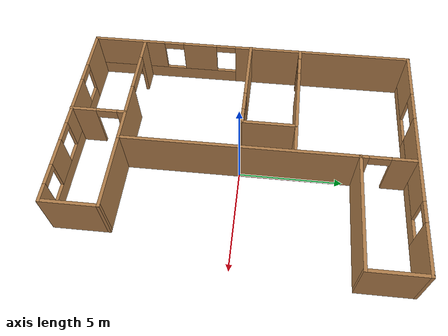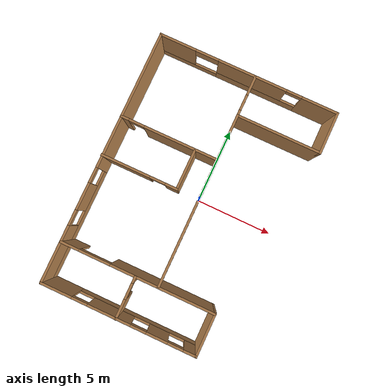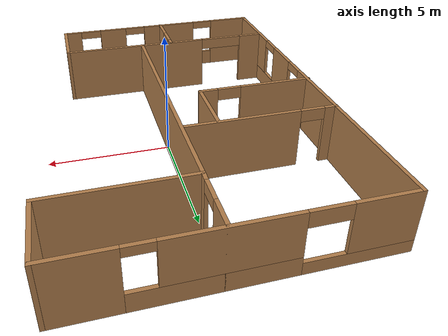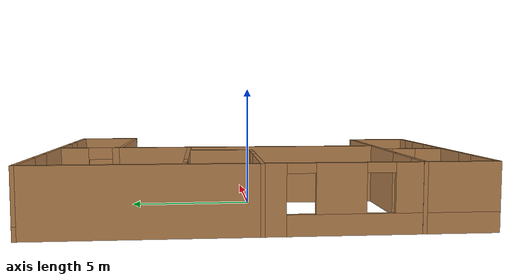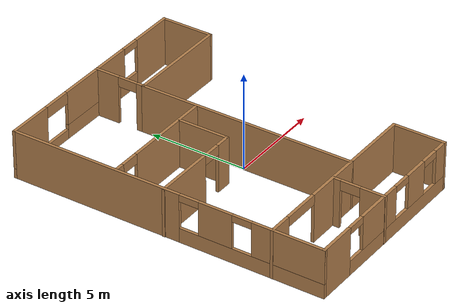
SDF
<?xml version='1.0'?>
<sdf version='1.6'>
  <model name='Building'>
    <pose frame=''>-0.466 -0.083499 0 0 -0 0</pose>
    <link name='Wall_35'>
      <pose frame=''>-0.859 -8.1425 0 0 -0 0</pose>
      <visual name='Wall_35_Visual_0'>
        <pose frame=''>-3.97971 0 1.25 0 -0 0</pose>
        <geometry>
          <box>
            <size>2.04059 0.15 2.5</size>
          </box>
        </geometry>
        <material>
          <script>
            <uri>file://media/materials/scripts/gazebo.material</uri>
            <name>Gazebo/Wood</name>
          </script>
          <ambient>0.996078 0.47451 0.0196078 1</ambient>
        </material>
        <meta>
          <layer>0</layer>
        </meta>
      </visual>
      <collision name='Wall_35_Collision_0'>
        <geometry>
          <box>
            <size>2.04059 0.15 2.5</size>
          </box>
        </geometry>
        <pose frame=''>-3.97971 0 1.25 0 -0 0</pose>
      </collision>
      <visual name='Wall_35_Visual_1'>
        <pose frame=''>1.02029 0 0.375 0 -0 0</pose>
        <geometry>
          <box>
            <size>7.95941 0.15 0.75</size>
          </box>
        </geometry>
        <material>
          <script>
            <uri>file://media/materials/scripts/gazebo.material</uri>
            <name>Gazebo/Wood</name>
          </script>
          <ambient>0.996078 0.47451 0.0196078 1</ambient>
        </material>
        <meta>
          <layer>0</layer>
        </meta>
      </visual>
      <collision name='Wall_35_Collision_1'>
        <geometry>
          <box>
            <size>7.95941 0.15 0.75</size>
          </box>
        </geometry>
        <pose frame=''>1.02029 0 0.375 0 -0 0</pose>
      </collision>
      <visual name='Wall_35_Visual_2'>
        <pose frame=''>-0.589488 0 1.625 0 -0 0</pose>
        <geometry>
          <box>
            <size>2.73985 0.15 1.75</size>
          </box>
        </geometry>
        <material>
          <script>
            <uri>file://media/materials/scripts/gazebo.material</uri>
            <name>Gazebo/Wood</name>
          </script>
          <ambient>0.996078 0.47451 0.0196078 1</ambient>
        </material>
        <meta>
          <layer>0</layer>
        </meta>
      </visual>
      <collision name='Wall_35_Collision_2'>
        <geometry>
          <box>
            <size>2.73985 0.15 1.75</size>
          </box>
        </geometry>
        <pose frame=''>-0.589488 0 1.625 0 -0 0</pose>
      </collision>
      <visual name='Wall_35_Visual_3'>
        <pose frame=''>2.45057 0 1.625 0 -0 0</pose>
        <geometry>
          <box>
            <size>1.34027 0.15 1.75</size>
          </box>
        </geometry>
        <material>
          <script>
            <uri>file://media/materials/scripts/gazebo.material</uri>
            <name>Gazebo/Wood</name>
          </script>
          <ambient>0.996078 0.47451 0.0196078 1</ambient>
        </material>
        <meta>
          <layer>0</layer>
        </meta>
      </visual>
      <collision name='Wall_35_Collision_3'>
        <geometry>
          <box>
            <size>1.34027 0.15 1.75</size>
          </box>
        </geometry>
        <pose frame=''>2.45057 0 1.625 0 -0 0</pose>
      </collision>
      <visual name='Wall_35_Visual_4'>
        <pose frame=''>4.56035 0 1.625 0 -0 0</pose>
        <geometry>
          <box>
            <size>0.879297 0.15 1.75</size>
          </box>
        </geometry>
        <material>
          <script>
            <uri>file://media/materials/scripts/gazebo.material</uri>
            <name>Gazebo/Wood</name>
          </script>
          <ambient>0.996078 0.47451 0.0196078 1</ambient>
        </material>
        <meta>
          <layer>0</layer>
        </meta>
      </visual>
      <collision name='Wall_35_Collision_4'>
        <geometry>
          <box>
            <size>0.879297 0.15 1.75</size>
          </box>
        </geometry>
        <pose frame=''>4.56035 0 1.625 0 -0 0</pose>
      </collision>
      <visual name='Wall_35_Visual_5'>
        <pose frame=''>-2.45941 0 2.325 0 -0 0</pose>
        <geometry>
          <box>
            <size>1 0.15 0.35</size>
          </box>
        </geometry>
        <material>
          <script>
            <uri>file://media/materials/scripts/gazebo.material</uri>
            <name>Gazebo/Wood</name>
          </script>
          <ambient>0.996078 0.47451 0.0196078 1</ambient>
        </material>
        <meta>
          <layer>0</layer>
        </meta>
      </visual>
      <collision name='Wall_35_Collision_5'>
        <geometry>
          <box>
            <size>1 0.15 0.35</size>
          </box>
        </geometry>
        <pose frame=''>-2.45941 0 2.325 0 -0 0</pose>
      </collision>
      <visual name='Wall_35_Visual_6'>
        <pose frame=''>1.28044 0 2.325 0 -0 0</pose>
        <geometry>
          <box>
            <size>1 0.15 0.35</size>
          </box>
        </geometry>
        <material>
          <script>
            <uri>file://media/materials/scripts/gazebo.material</uri>
            <name>Gazebo/Wood</name>
          </script>
          <ambient>0.996078 0.47451 0.0196078 1</ambient>
        </material>
        <meta>
          <layer>0</layer>
        </meta>
      </visual>
      <collision name='Wall_35_Collision_6'>
        <geometry>
          <box>
            <size>1 0.15 0.35</size>
          </box>
        </geometry>
        <pose frame=''>1.28044 0 2.325 0 -0 0</pose>
      </collision>
      <visual name='Wall_35_Visual_7'>
        <pose frame=''>3.6207 0 2.325 0 -0 0</pose>
        <geometry>
          <box>
            <size>1 0.15 0.35</size>
          </box>
        </geometry>
        <material>
          <script>
            <uri>file://media/materials/scripts/gazebo.material</uri>
            <name>Gazebo/Wood</name>
          </script>
          <ambient>0.996078 0.47451 0.0196078 1</ambient>
        </material>
        <meta>
          <layer>0</layer>
        </meta>
      </visual>
      <collision name='Wall_35_Collision_7'>
        <geometry>
          <box>
            <size>1 0.15 0.35</size>
          </box>
        </geometry>
        <pose frame=''>3.6207 0 2.325 0 -0 0</pose>
      </collision>
    </link>
    <link name='Wall_36'>
      <collision name='Wall_36_Collision'>
        <geometry>
          <box>
            <size>2.75 0.15 2.5</size>
          </box>
        </geometry>
        <pose frame=''>0 0 1.25 0 -0 0</pose>
      </collision>
      <visual name='Wall_36_Visual'>
        <pose frame=''>0 0 1.25 0 -0 0</pose>
        <geometry>
          <box>
            <size>2.75 0.15 2.5</size>
          </box>
        </geometry>
        <material>
          <script>
            <uri>file://media/materials/scripts/gazebo.material</uri>
            <name>Gazebo/Wood</name>
          </script>
          <ambient>0.996078 0.47451 0.0196078 1</ambient>
        </material>
        <meta>
          <layer>0</layer>
        </meta>
      </visual>
      <pose frame=''>4.066 -6.8425 0 0 -0 1.5708</pose>
    </link>
    <link name='Wall_37'>
      <collision name='Wall_37_Collision'>
        <geometry>
          <box>
            <size>3.75 0.15 2.5</size>
          </box>
        </geometry>
        <pose frame=''>0 0 1.25 0 -0 0</pose>
      </collision>
      <visual name='Wall_37_Visual'>
        <pose frame=''>0 0 1.25 0 -0 0</pose>
        <geometry>
          <box>
            <size>3.75 0.15 2.5</size>
          </box>
        </geometry>
        <material>
          <script>
            <uri>file://media/materials/scripts/gazebo.material</uri>
            <name>Gazebo/Wood</name>
          </script>
          <ambient>0.996078 0.47451 0.0196078 1</ambient>
        </material>
        <meta>
          <layer>0</layer>
        </meta>
      </visual>
      <pose frame=''>2.266 -5.5425 0 0 -0 3.14159</pose>
    </link>
    <link name='Wall_38'>
      <collision name='Wall_38_Collision'>
        <geometry>
          <box>
            <size>11.25 0.15 2.5</size>
          </box>
        </geometry>
        <pose frame=''>0 0 1.25 0 -0 0</pose>
      </collision>
      <visual name='Wall_38_Visual'>
        <pose frame=''>0 0 1.25 0 -0 0</pose>
        <geometry>
          <box>
            <size>11.25 0.15 2.5</size>
          </box>
        </geometry>
        <material>
          <script>
            <uri>file://media/materials/scripts/gazebo.material</uri>
            <name>Gazebo/Wood</name>
          </script>
          <ambient>0.996078 0.47451 0.0196078 1</ambient>
        </material>
        <meta>
          <layer>0</layer>
        </meta>
      </visual>
      <pose frame=''>0.466 0.007499 0 0 -0 1.5708</pose>
    </link>
    <link name='Wall_39'>
      <collision name='Wall_39_Collision'>
        <geometry>
          <box>
            <size>5.5 0.15 2.5</size>
          </box>
        </geometry>
        <pose frame=''>0 0 1.25 0 -0 0</pose>
      </collision>
      <visual name='Wall_39_Visual'>
        <pose frame=''>0 0 1.25 0 -0 0</pose>
        <geometry>
          <box>
            <size>5.5 0.15 2.5</size>
          </box>
        </geometry>
        <material>
          <script>
            <uri>file://media/materials/scripts/gazebo.material</uri>
            <name>Gazebo/Wood</name>
          </script>
          <ambient>0.996078 0.47451 0.0196078 1</ambient>
        </material>
        <meta>
          <layer>0</layer>
        </meta>
      </visual>
      <pose frame=''>3.141 5.5575 0 0 -0 0</pose>
    </link>
    <link name='Wall_40'>
      <collision name='Wall_40_Collision'>
        <geometry>
          <box>
            <size>2.75 0.15 2.5</size>
          </box>
        </geometry>
        <pose frame=''>0 0 1.25 0 -0 0</pose>
      </collision>
      <visual name='Wall_40_Visual'>
        <pose frame=''>0 0 1.25 0 -0 0</pose>
        <geometry>
          <box>
            <size>2.75 0.15 2.5</size>
          </box>
        </geometry>
        <material>
          <script>
            <uri>file://media/materials/scripts/gazebo.material</uri>
            <name>Gazebo/Wood</name>
          </script>
          <ambient>0.996078 0.47451 0.0196078 1</ambient>
        </material>
        <meta>
          <layer>0</layer>
        </meta>
      </visual>
      <pose frame=''>5.816 6.8575 0 0 -0 1.5708</pose>
    </link>
    <link name='Wall_41'>
      <pose frame=''>0.016 8.1575 0 0 -0 3.14159</pose>
      <visual name='Wall_41_Visual_0'>
        <pose frame=''>-4.68142 0 1.25 0 -0 0</pose>
        <geometry>
          <box>
            <size>2.38717 0.15 2.5</size>
          </box>
        </geometry>
        <material>
          <script>
            <uri>file://media/materials/scripts/gazebo.material</uri>
            <name>Gazebo/Wood</name>
          </script>
          <ambient>0.996078 0.47451 0.0196078 1</ambient>
        </material>
        <meta>
          <layer>0</layer>
        </meta>
      </visual>
      <collision name='Wall_41_Collision_0'>
        <geometry>
          <box>
            <size>2.38717 0.15 2.5</size>
          </box>
        </geometry>
        <pose frame=''>-4.68142 0 1.25 0 -0 0</pose>
      </collision>
      <visual name='Wall_41_Visual_1'>
        <pose frame=''>-0.76125 0 0.375 0 -0 0</pose>
        <geometry>
          <box>
            <size>5.45316 0.15 0.75</size>
          </box>
        </geometry>
        <material>
          <script>
            <uri>file://media/materials/scripts/gazebo.material</uri>
            <name>Gazebo/Wood</name>
          </script>
          <ambient>0.996078 0.47451 0.0196078 1</ambient>
        </material>
        <meta>
          <layer>0</layer>
        </meta>
      </visual>
      <collision name='Wall_41_Collision_1'>
        <geometry>
          <box>
            <size>5.45316 0.15 0.75</size>
          </box>
        </geometry>
        <pose frame=''>-0.76125 0 0.375 0 -0 0</pose>
      </collision>
      <visual name='Wall_41_Visual_2'>
        <pose frame=''>3.92016 0 0.25 0 -0 0</pose>
        <geometry>
          <box>
            <size>3.90967 0.15 0.5</size>
          </box>
        </geometry>
        <material>
          <script>
            <uri>file://media/materials/scripts/gazebo.material</uri>
            <name>Gazebo/Wood</name>
          </script>
          <ambient>0.996078 0.47451 0.0196078 1</ambient>
        </material>
        <meta>
          <layer>0</layer>
        </meta>
      </visual>
      <collision name='Wall_41_Collision_2'>
        <geometry>
          <box>
            <size>3.90967 0.15 0.5</size>
          </box>
        </geometry>
        <pose frame=''>3.92016 0 0.25 0 -0 0</pose>
      </collision>
      <visual name='Wall_41_Visual_3'>
        <pose frame=''>4.67016 0 1.5 0 -0 0</pose>
        <geometry>
          <box>
            <size>2.40967 0.15 2</size>
          </box>
        </geometry>
        <material>
          <script>
            <uri>file://media/materials/scripts/gazebo.material</uri>
            <name>Gazebo/Wood</name>
          </script>
          <ambient>0.996078 0.47451 0.0196078 1</ambient>
        </material>
        <meta>
          <layer>0</layer>
        </meta>
      </visual>
      <collision name='Wall_41_Collision_3'>
        <geometry>
          <box>
            <size>2.40967 0.15 2</size>
          </box>
        </geometry>
        <pose frame=''>4.67016 0 1.5 0 -0 0</pose>
      </collision>
      <visual name='Wall_41_Visual_4'>
        <pose frame=''>-0.26125 0 1.625 0 -0 0</pose>
        <geometry>
          <box>
            <size>4.45316 0.15 1.75</size>
          </box>
        </geometry>
        <material>
          <script>
            <uri>file://media/materials/scripts/gazebo.material</uri>
            <name>Gazebo/Wood</name>
          </script>
          <ambient>0.996078 0.47451 0.0196078 1</ambient>
        </material>
        <meta>
          <layer>0</layer>
        </meta>
      </visual>
      <collision name='Wall_41_Collision_4'>
        <geometry>
          <box>
            <size>4.45316 0.15 1.75</size>
          </box>
        </geometry>
        <pose frame=''>-0.26125 0 1.625 0 -0 0</pose>
      </collision>
      <visual name='Wall_41_Visual_5'>
        <pose frame=''>2.71533 0 2.2 0 -0 0</pose>
        <geometry>
          <box>
            <size>1.5 0.15 0.6</size>
          </box>
        </geometry>
        <material>
          <script>
            <uri>file://media/materials/scripts/gazebo.material</uri>
            <name>Gazebo/Wood</name>
          </script>
          <ambient>0.996078 0.47451 0.0196078 1</ambient>
        </material>
        <meta>
          <layer>0</layer>
        </meta>
      </visual>
      <collision name='Wall_41_Collision_5'>
        <geometry>
          <box>
            <size>1.5 0.15 0.6</size>
          </box>
        </geometry>
        <pose frame=''>2.71533 0 2.2 0 -0 0</pose>
      </collision>
      <visual name='Wall_41_Visual_6'>
        <pose frame=''>-2.98783 0 2.325 0 -0 0</pose>
        <geometry>
          <box>
            <size>1 0.15 0.35</size>
          </box>
        </geometry>
        <material>
          <script>
            <uri>file://media/materials/scripts/gazebo.material</uri>
            <name>Gazebo/Wood</name>
          </script>
          <ambient>0.996078 0.47451 0.0196078 1</ambient>
        </material>
        <meta>
          <layer>0</layer>
        </meta>
      </visual>
      <collision name='Wall_41_Collision_6'>
        <geometry>
          <box>
            <size>1 0.15 0.35</size>
          </box>
        </geometry>
        <pose frame=''>-2.98783 0 2.325 0 -0 0</pose>
      </collision>
    </link>
    <link name='Wall_42'>
      <pose frame=''>-5.784 0.007499 0 0 -0 -1.5708</pose>
      <visual name='Wall_42_Visual_0'>
        <pose frame=''>-3.729 0 1.25 0 -0 0</pose>
        <geometry>
          <box>
            <size>8.992 0.15 2.5</size>
          </box>
        </geometry>
        <material>
          <script>
            <uri>file://media/materials/scripts/gazebo.material</uri>
            <name>Gazebo/Wood</name>
          </script>
          <ambient>0.996078 0.47451 0.0196078 1</ambient>
        </material>
        <meta>
          <layer>0</layer>
        </meta>
      </visual>
      <collision name='Wall_42_Collision_0'>
        <geometry>
          <box>
            <size>8.992 0.15 2.5</size>
          </box>
        </geometry>
        <pose frame=''>-3.729 0 1.25 0 -0 0</pose>
      </collision>
      <visual name='Wall_42_Visual_1'>
        <pose frame=''>4.496 0 0.375 0 -0 0</pose>
        <geometry>
          <box>
            <size>7.458 0.15 0.75</size>
          </box>
        </geometry>
        <material>
          <script>
            <uri>file://media/materials/scripts/gazebo.material</uri>
            <name>Gazebo/Wood</name>
          </script>
          <ambient>0.996078 0.47451 0.0196078 1</ambient>
        </material>
        <meta>
          <layer>0</layer>
        </meta>
      </visual>
      <collision name='Wall_42_Collision_1'>
        <geometry>
          <box>
            <size>7.458 0.15 0.75</size>
          </box>
        </geometry>
        <pose frame=''>4.496 0 0.375 0 -0 0</pose>
      </collision>
      <visual name='Wall_42_Visual_2'>
        <pose frame=''>2.63915 0 1.625 0 -0 0</pose>
        <geometry>
          <box>
            <size>1.7443 0.15 1.75</size>
          </box>
        </geometry>
        <material>
          <script>
            <uri>file://media/materials/scripts/gazebo.material</uri>
            <name>Gazebo/Wood</name>
          </script>
          <ambient>0.996078 0.47451 0.0196078 1</ambient>
        </material>
        <meta>
          <layer>0</layer>
        </meta>
      </visual>
      <collision name='Wall_42_Collision_2'>
        <geometry>
          <box>
            <size>1.7443 0.15 1.75</size>
          </box>
        </geometry>
        <pose frame=''>2.63915 0 1.625 0 -0 0</pose>
      </collision>
      <visual name='Wall_42_Visual_3'>
        <pose frame=''>6.36815 0 1.625 0 -0 0</pose>
        <geometry>
          <box>
            <size>3.7137 0.15 1.75</size>
          </box>
        </geometry>
        <material>
          <script>
            <uri>file://media/materials/scripts/gazebo.material</uri>
            <name>Gazebo/Wood</name>
          </script>
          <ambient>0.996078 0.47451 0.0196078 1</ambient>
        </material>
        <meta>
          <layer>0</layer>
        </meta>
      </visual>
      <collision name='Wall_42_Collision_3'>
        <geometry>
          <box>
            <size>3.7137 0.15 1.75</size>
          </box>
        </geometry>
        <pose frame=''>6.36815 0 1.625 0 -0 0</pose>
      </collision>
      <visual name='Wall_42_Visual_4'>
        <pose frame=''>1.267 0 2.325 0 -0 0</pose>
        <geometry>
          <box>
            <size>1 0.15 0.35</size>
          </box>
        </geometry>
        <material>
          <script>
            <uri>file://media/materials/scripts/gazebo.material</uri>
            <name>Gazebo/Wood</name>
          </script>
          <ambient>0.996078 0.47451 0.0196078 1</ambient>
        </material>
        <meta>
          <layer>0</layer>
        </meta>
      </visual>
      <collision name='Wall_42_Collision_4'>
        <geometry>
          <box>
            <size>1 0.15 0.35</size>
          </box>
        </geometry>
        <pose frame=''>1.267 0 2.325 0 -0 0</pose>
      </collision>
      <visual name='Wall_42_Visual_5'>
        <pose frame=''>4.0113 0 2.325 0 -0 0</pose>
        <geometry>
          <box>
            <size>1 0.15 0.35</size>
          </box>
        </geometry>
        <material>
          <script>
            <uri>file://media/materials/scripts/gazebo.material</uri>
            <name>Gazebo/Wood</name>
          </script>
          <ambient>0.996078 0.47451 0.0196078 1</ambient>
        </material>
        <meta>
          <layer>0</layer>
        </meta>
      </visual>
      <collision name='Wall_42_Collision_5'>
        <geometry>
          <box>
            <size>1 0.15 0.35</size>
          </box>
        </geometry>
        <pose frame=''>4.0113 0 2.325 0 -0 0</pose>
      </collision>
    </link>
    <link name='Wall_44'>
      <pose frame=''>0.466 6.8575 0 0 -0 1.5708</pose>
      <visual name='Wall_44_Visual_0'>
        <pose frame=''>-1.15301 0 1.25 0 -0 0</pose>
        <geometry>
          <box>
            <size>0.443977 0.15 2.5</size>
          </box>
        </geometry>
        <material>
          <script>
            <uri>file://media/materials/scripts/gazebo.material</uri>
            <name>Gazebo/Wood</name>
          </script>
          <ambient>0.996078 0.47451 0.0196078 1</ambient>
        </material>
        <meta>
          <layer>0</layer>
        </meta>
      </visual>
      <collision name='Wall_44_Collision_0'>
        <geometry>
          <box>
            <size>0.443977 0.15 2.5</size>
          </box>
        </geometry>
        <pose frame=''>-1.15301 0 1.25 0 -0 0</pose>
      </collision>
      <visual name='Wall_44_Visual_1'>
        <pose frame=''>0.721988 0 1.25 0 -0 0</pose>
        <geometry>
          <box>
            <size>1.30602 0.15 2.5</size>
          </box>
        </geometry>
        <material>
          <script>
            <uri>file://media/materials/scripts/gazebo.material</uri>
            <name>Gazebo/Wood</name>
          </script>
          <ambient>0.996078 0.47451 0.0196078 1</ambient>
        </material>
        <meta>
          <layer>0</layer>
        </meta>
      </visual>
      <collision name='Wall_44_Collision_1'>
        <geometry>
          <box>
            <size>1.30602 0.15 2.5</size>
          </box>
        </geometry>
        <pose frame=''>0.721988 0 1.25 0 -0 0</pose>
      </collision>
      <visual name='Wall_44_Visual_2'>
        <pose frame=''>-0.431023 0 2.25 0 -0 0</pose>
        <geometry>
          <box>
            <size>1 0.15 0.5</size>
          </box>
        </geometry>
        <material>
          <script>
            <uri>file://media/materials/scripts/gazebo.material</uri>
            <name>Gazebo/Wood</name>
          </script>
          <ambient>0.996078 0.47451 0.0196078 1</ambient>
        </material>
        <meta>
          <layer>0</layer>
        </meta>
      </visual>
      <collision name='Wall_44_Collision_2'>
        <geometry>
          <box>
            <size>1 0.15 0.5</size>
          </box>
        </geometry>
        <pose frame=''>-0.431023 0 2.25 0 -0 0</pose>
      </collision>
    </link>
    <link name='Wall_46'>
      <pose frame=''>-2.733 2.6255 0 0 -0 0</pose>
      <visual name='Wall_46_Visual_0'>
        <pose frame=''>-2.84077 0 1.25 0 -0 0</pose>
        <geometry>
          <box>
            <size>0.56845 0.15 2.5</size>
          </box>
        </geometry>
        <material>
          <script>
            <uri>file://media/materials/scripts/gazebo.material</uri>
            <name>Gazebo/Wood</name>
          </script>
          <ambient>0.996078 0.47451 0.0196078 1</ambient>
        </material>
        <meta>
          <layer>0</layer>
        </meta>
      </visual>
      <collision name='Wall_46_Collision_0'>
        <geometry>
          <box>
            <size>0.56845 0.15 2.5</size>
          </box>
        </geometry>
        <pose frame=''>-2.84077 0 1.25 0 -0 0</pose>
      </collision>
      <visual name='Wall_46_Visual_1'>
        <pose frame=''>0.784225 0 1.25 0 -0 0</pose>
        <geometry>
          <box>
            <size>4.68155 0.15 2.5</size>
          </box>
        </geometry>
        <material>
          <script>
            <uri>file://media/materials/scripts/gazebo.material</uri>
            <name>Gazebo/Wood</name>
          </script>
          <ambient>0.996078 0.47451 0.0196078 1</ambient>
        </material>
        <meta>
          <layer>0</layer>
        </meta>
      </visual>
      <collision name='Wall_46_Collision_1'>
        <geometry>
          <box>
            <size>4.68155 0.15 2.5</size>
          </box>
        </geometry>
        <pose frame=''>0.784225 0 1.25 0 -0 0</pose>
      </collision>
      <visual name='Wall_46_Visual_2'>
        <pose frame=''>-2.05655 0 2.25 0 -0 0</pose>
        <geometry>
          <box>
            <size>1 0.15 0.5</size>
          </box>
        </geometry>
        <material>
          <script>
            <uri>file://media/materials/scripts/gazebo.material</uri>
            <name>Gazebo/Wood</name>
          </script>
          <ambient>0.996078 0.47451 0.0196078 1</ambient>
        </material>
        <meta>
          <layer>0</layer>
        </meta>
      </visual>
      <collision name='Wall_46_Collision_2'>
        <geometry>
          <box>
            <size>1 0.15 0.5</size>
          </box>
        </geometry>
        <pose frame=''>-2.05655 0 2.25 0 -0 0</pose>
      </collision>
    </link>
    <link name='Wall_48'>
      <pose frame=''>-3.391 0.046499 0 0 -0 0</pose>
      <visual name='Wall_48_Visual_0'>
        <pose frame=''>-0.915348 0 1.25 0 -0 0</pose>
        <geometry>
          <box>
            <size>3.1693 0.15 2.5</size>
          </box>
        </geometry>
        <material>
          <script>
            <uri>file://media/materials/scripts/gazebo.material</uri>
            <name>Gazebo/Wood</name>
          </script>
          <ambient>0.996078 0.47451 0.0196078 1</ambient>
        </material>
        <meta>
          <layer>0</layer>
        </meta>
      </visual>
      <collision name='Wall_48_Collision_0'>
        <geometry>
          <box>
            <size>3.1693 0.15 2.5</size>
          </box>
        </geometry>
        <pose frame=''>-0.915348 0 1.25 0 -0 0</pose>
      </collision>
      <visual name='Wall_48_Visual_1'>
        <pose frame=''>2.08465 0 1.25 0 -0 0</pose>
        <geometry>
          <box>
            <size>0.830696 0.15 2.5</size>
          </box>
        </geometry>
        <material>
          <script>
            <uri>file://media/materials/scripts/gazebo.material</uri>
            <name>Gazebo/Wood</name>
          </script>
          <ambient>0.996078 0.47451 0.0196078 1</ambient>
        </material>
        <meta>
          <layer>0</layer>
        </meta>
      </visual>
      <collision name='Wall_48_Collision_1'>
        <geometry>
          <box>
            <size>0.830696 0.15 2.5</size>
          </box>
        </geometry>
        <pose frame=''>2.08465 0 1.25 0 -0 0</pose>
      </collision>
      <visual name='Wall_48_Visual_2'>
        <pose frame=''>1.1693 0 2.25 0 -0 0</pose>
        <geometry>
          <box>
            <size>1 0.15 0.5</size>
          </box>
        </geometry>
        <material>
          <script>
            <uri>file://media/materials/scripts/gazebo.material</uri>
            <name>Gazebo/Wood</name>
          </script>
          <ambient>0.996078 0.47451 0.0196078 1</ambient>
        </material>
        <meta>
          <layer>0</layer>
        </meta>
      </visual>
      <collision name='Wall_48_Collision_2'>
        <geometry>
          <box>
            <size>1 0.15 0.5</size>
          </box>
        </geometry>
        <pose frame=''>1.1693 0 2.25 0 -0 0</pose>
      </collision>
    </link>
    <link name='Wall_49'>
      <collision name='Wall_49_Collision'>
        <geometry>
          <box>
            <size>2.66373 0.15 2.5</size>
          </box>
        </geometry>
        <pose frame=''>0 0 1.25 0 -0 0</pose>
      </collision>
      <visual name='Wall_49_Visual'>
        <pose frame=''>0 0 1.25 0 -0 0</pose>
        <geometry>
          <box>
            <size>2.66373 0.15 2.5</size>
          </box>
        </geometry>
        <material>
          <script>
            <uri>file://media/materials/scripts/gazebo.material</uri>
            <name>Gazebo/Wood</name>
          </script>
          <ambient>0.996078 0.47451 0.0196078 1</ambient>
        </material>
        <meta>
          <layer>0</layer>
        </meta>
      </visual>
      <pose frame=''>-0.964 1.3035 0 0 -0 1.5692</pose>
    </link>
    <link name='Wall_51'>
      <pose frame=''>-2.6615 -5.5425 0 0 -0 0</pose>
      <visual name='Wall_51_Visual_0'>
        <pose frame=''>-2.57774 0 1.25 0 -0 0</pose>
        <geometry>
          <box>
            <size>1.24958 0.15 2.5</size>
          </box>
        </geometry>
        <material>
          <script>
            <uri>file://media/materials/scripts/gazebo.material</uri>
            <name>Gazebo/Wood</name>
          </script>
          <ambient>0.996078 0.47451 0.0196078 1</ambient>
        </material>
        <meta>
          <layer>0</layer>
        </meta>
      </visual>
      <collision name='Wall_51_Collision_0'>
        <geometry>
          <box>
            <size>1.24958 0.15 2.5</size>
          </box>
        </geometry>
        <pose frame=''>-2.57774 0 1.25 0 -0 0</pose>
      </collision>
      <visual name='Wall_51_Visual_1'>
        <pose frame=''>1.62479 0 1.25 0 -0 0</pose>
        <geometry>
          <box>
            <size>3.15547 0.15 2.5</size>
          </box>
        </geometry>
        <material>
          <script>
            <uri>file://media/materials/scripts/gazebo.material</uri>
            <name>Gazebo/Wood</name>
          </script>
          <ambient>0.996078 0.47451 0.0196078 1</ambient>
        </material>
        <meta>
          <layer>0</layer>
        </meta>
      </visual>
      <collision name='Wall_51_Collision_1'>
        <geometry>
          <box>
            <size>3.15547 0.15 2.5</size>
          </box>
        </geometry>
        <pose frame=''>1.62479 0 1.25 0 -0 0</pose>
      </collision>
      <visual name='Wall_51_Visual_2'>
        <pose frame=''>-0.952945 0 2.25 0 -0 0</pose>
        <geometry>
          <box>
            <size>2 0.15 0.5</size>
          </box>
        </geometry>
        <material>
          <script>
            <uri>file://media/materials/scripts/gazebo.material</uri>
            <name>Gazebo/Wood</name>
          </script>
          <ambient>0.996078 0.47451 0.0196078 1</ambient>
        </material>
        <meta>
          <layer>0</layer>
        </meta>
      </visual>
      <collision name='Wall_51_Collision_2'>
        <geometry>
          <box>
            <size>2 0.15 0.5</size>
          </box>
        </geometry>
        <pose frame=''>-0.952945 0 2.25 0 -0 0</pose>
      </collision>
    </link>
    <link name='Wall_53'>
      <pose frame=''>-0.99 -6.8575 0 0 -0 -1.5708</pose>
      <visual name='Wall_53_Visual_0'>
        <pose frame=''>-1.14437 0 1.25 0 -0 0</pose>
        <geometry>
          <box>
            <size>0.461266 0.15 2.5</size>
          </box>
        </geometry>
        <material>
          <script>
            <uri>file://media/materials/scripts/gazebo.material</uri>
            <name>Gazebo/Wood</name>
          </script>
          <ambient>0.996078 0.47451 0.0196078 1</ambient>
        </material>
        <meta>
          <layer>0</layer>
        </meta>
      </visual>
      <collision name='Wall_53_Collision_0'>
        <geometry>
          <box>
            <size>0.461266 0.15 2.5</size>
          </box>
        </geometry>
        <pose frame=''>-1.14437 0 1.25 0 -0 0</pose>
      </collision>
      <visual name='Wall_53_Visual_1'>
        <pose frame=''>0.730633 0 1.25 0 -0 0</pose>
        <geometry>
          <box>
            <size>1.28873 0.15 2.5</size>
          </box>
        </geometry>
        <material>
          <script>
            <uri>file://media/materials/scripts/gazebo.material</uri>
            <name>Gazebo/Wood</name>
          </script>
          <ambient>0.996078 0.47451 0.0196078 1</ambient>
        </material>
        <meta>
          <layer>0</layer>
        </meta>
      </visual>
      <collision name='Wall_53_Collision_1'>
        <geometry>
          <box>
            <size>1.28873 0.15 2.5</size>
          </box>
        </geometry>
        <pose frame=''>0.730633 0 1.25 0 -0 0</pose>
      </collision>
      <visual name='Wall_53_Visual_2'>
        <pose frame=''>-0.413734 0 2.25 0 -0 0</pose>
        <geometry>
          <box>
            <size>1 0.15 0.5</size>
          </box>
        </geometry>
        <material>
          <script>
            <uri>file://media/materials/scripts/gazebo.material</uri>
            <name>Gazebo/Wood</name>
          </script>
          <ambient>0.996078 0.47451 0.0196078 1</ambient>
        </material>
        <meta>
          <layer>0</layer>
        </meta>
      </visual>
      <collision name='Wall_53_Collision_2'>
        <geometry>
          <box>
            <size>1 0.15 0.5</size>
          </box>
        </geometry>
        <pose frame=''>-0.413734 0 2.25 0 -0 0</pose>
      </collision>
    </link>
    <static>1</static>
  </model>
</sdf>
